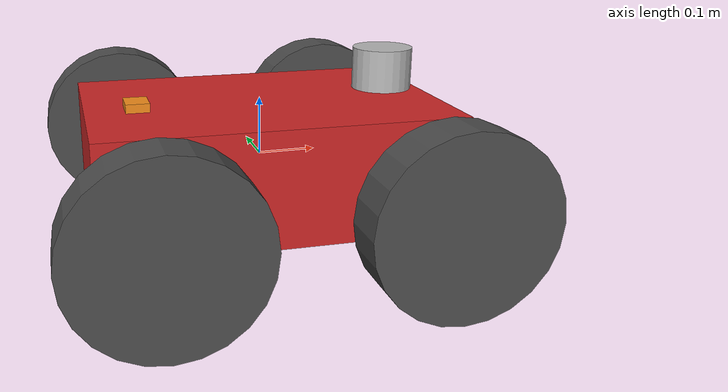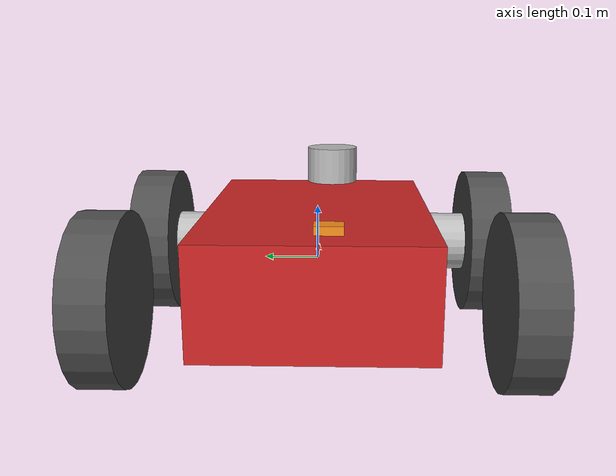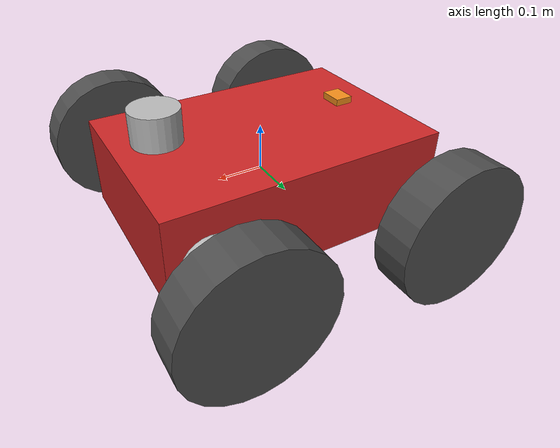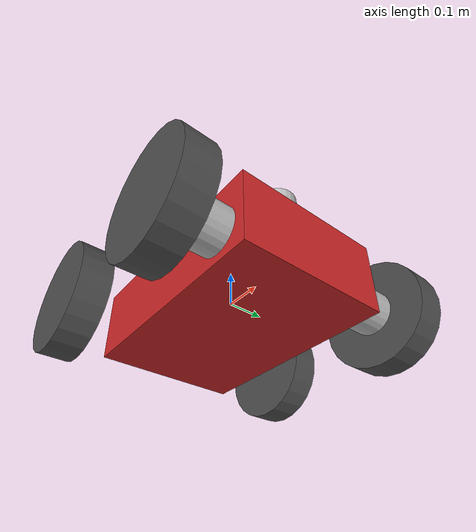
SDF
<sdf version='1.9'>
  <model name='arv'>
    <link name='base_link'>
      <inertial>
        <pose>0 0 0 0 0 0</pose>
        <mass>40</mass>
        <inertia>
          <ixx>0.68969666666666651</ixx>
          <ixy>0</ixy>
          <ixz>0</ixz>
          <iyy>1.349446666666666</iyy>
          <iyz>0</iyz>
          <izz>1.349446666666666</izz>
        </inertia>
      </inertial>
      <collision name='base_link_collision'>
        <pose>0 0 0 0 0 0</pose>
        <geometry>
          <box>
            <size>0.605 0.41 0.197</size>
          </box>
        </geometry>
        <surface>
          <contact>
            <ode/>
          </contact>
          <friction>
            <ode/>
          </friction>
        </surface>
      </collision>
      <visual name='base_link_visual'>
        <pose>0 0 0 0 0 0</pose>
        <geometry>
          <box>
            <size>0.605 0.41 0.197</size>
          </box>
        </geometry>
        <material>
          <script>
            <name>Gazebo/Red</name>
            <uri>file://media/materials/scripts/gazebo.material</uri>
          </script>
          <diffuse>1 0 0.125 1</diffuse>
          <ambient>1 0 0.125 1</ambient>
        </material>
      </visual>
    </link>
    <joint name='LEFT_HINGE_JOINT' type='revolute'>
      <pose relative_to='base_link'>0.2159 0.255 -0.0185 -1.570796326794896 0 0</pose>
      <parent>base_link</parent>
      <child>LEFT_HINGE</child>
      <axis>
        <xyz>0 1 0</xyz>
        <limit>
          <lower>-1</lower>
          <upper>1</upper>
          <effort>100</effort>
          <velocity>1</velocity>
        </limit>
        <dynamics>
          <damping>0</damping>
          <friction>0</friction>
          <spring_reference>0</spring_reference>
          <spring_stiffness>0</spring_stiffness>
        </dynamics>
      </axis>
    </joint>
    <link name='LEFT_HINGE'>
      <pose relative_to='LEFT_HINGE_JOINT'>0 0 0 0 0 0</pose>
      <inertial>
        <pose>0 0 0 0 0 0</pose>
        <mass>0.20000000000000001</mass>
        <inertia>
          <ixx>0.00034666666666666662</ixx>
          <ixy>0</ixy>
          <ixz>0</ixz>
          <iyy>0.00034666666666666662</iyy>
          <iyz>0</iyz>
          <izz>0.00036000000000000002</izz>
        </inertia>
      </inertial>
      <visual name='LEFT_HINGE_visual'>
        <pose>0 0 0 0 0 0</pose>
        <geometry>
          <cylinder>
            <length>0.10000000000000001</length>
            <radius>0.059999999999999998</radius>
          </cylinder>
        </geometry>
      </visual>
    </link>
    <joint name='LEFT_FRONT_WHEEL_JOINT' type='revolute'>
      <pose relative_to='LEFT_HINGE'>0 0 0.09 0 0 0</pose>
      <parent>LEFT_HINGE</parent>
      <child>LEFT_FRONT_WHEEL</child>
      <axis>
        <xyz>0 0 1</xyz>
        <limit>
          <effort>1</effort>
          <velocity>1</velocity>
          <lower>-10000000000000000</lower>
          <upper>10000000000000000</upper>
        </limit>
        <dynamics>
          <damping>1</damping>
          <friction>0</friction>
          <spring_reference>0</spring_reference>
          <spring_stiffness>0</spring_stiffness>
        </dynamics>
      </axis>
    </joint>
    <link name='LEFT_FRONT_WHEEL'>
      <pose relative_to='LEFT_FRONT_WHEEL_JOINT'>0 0 0 0 0 0</pose>
      <inertial>
        <pose>0 0 0 0 0 0</pose>
        <mass>5</mass>
        <inertia>
          <ixx>0.030791666666666662</ixx>
          <ixy>0</ixy>
          <ixz>0</ixz>
          <iyy>0.030791666666666662</iyy>
          <iyz>0</iyz>
          <izz>0.056249999999999988</izz>
        </inertia>
      </inertial>
      <collision name='LEFT_FRONT_WHEEL_collision'>
        <pose>0 0 0 0 0 0</pose>
        <geometry>
          <cylinder>
            <length>0.080000000000000002</length>
            <radius>0.14999999999999999</radius>
          </cylinder>
        </geometry>
        <surface>
          <contact>
            <ode>
              <kp>10000000</kp>
              <kd>1</kd>
              <max_vel>100</max_vel>
              <min_depth>0.0050000000000000001</min_depth>
            </ode>
          </contact>
          <friction>
            <ode>
              <mu>0.5</mu>
              <mu2>0.5</mu2>
              <fdir1>1 0 0</fdir1>
            </ode>
          </friction>
        </surface>
      </collision>
      <visual name='LEFT_FRONT_WHEEL_visual'>
        <pose>0 0 0 0 0 0</pose>
        <geometry>
          <cylinder>
            <length>0.080000000000000002</length>
            <radius>0.14999999999999999</radius>
          </cylinder>
        </geometry>
        <material>
          <script>
            <name>Gazebo/DarkGrey</name>
            <uri>file://media/materials/scripts/gazebo.material</uri>
          </script>
        </material>
      </visual>
    </link>
    <joint name='LEFT_REAR_WHEEL_JOINT' type='revolute'>
      <pose relative_to='base_link'>-0.2159 0.345 -0.0185 1.570796326794896 0 0</pose>
      <parent>base_link</parent>
      <child>LEFT_REAR_WHEEL</child>
      <axis>
        <xyz>0 0 1</xyz>
        <limit>
          <effort>1</effort>
          <velocity>1</velocity>
          <lower>-10000000000000000</lower>
          <upper>10000000000000000</upper>
        </limit>
        <dynamics>
          <damping>1</damping>
          <friction>0</friction>
          <spring_reference>0</spring_reference>
          <spring_stiffness>0</spring_stiffness>
        </dynamics>
      </axis>
    </joint>
    <link name='LEFT_REAR_WHEEL'>
      <pose relative_to='LEFT_REAR_WHEEL_JOINT'>0 0 0 0 0 0</pose>
      <inertial>
        <pose>0 0 0 0 0 0</pose>
        <mass>5</mass>
        <inertia>
          <ixx>0.030791666666666662</ixx>
          <ixy>0</ixy>
          <ixz>0</ixz>
          <iyy>0.030791666666666662</iyy>
          <iyz>0</iyz>
          <izz>0.056249999999999988</izz>
        </inertia>
      </inertial>
      <collision name='LEFT_REAR_WHEEL_collision'>
        <pose>0 0 0 0 0 0</pose>
        <geometry>
          <cylinder>
            <length>0.080000000000000002</length>
            <radius>0.14999999999999999</radius>
          </cylinder>
        </geometry>
        <surface>
          <contact>
            <ode>
              <kp>10000000</kp>
              <kd>1</kd>
              <max_vel>100</max_vel>
              <min_depth>0.0050000000000000001</min_depth>
            </ode>
          </contact>
          <friction>
            <ode>
              <mu>0</mu>
              <mu2>0</mu2>
              <fdir1>1 0 0</fdir1>
            </ode>
          </friction>
        </surface>
      </collision>
      <visual name='LEFT_REAR_WHEEL_visual'>
        <pose>0 0 0 0 0 0</pose>
        <geometry>
          <cylinder>
            <length>0.080000000000000002</length>
            <radius>0.14999999999999999</radius>
          </cylinder>
        </geometry>
        <material>
          <script>
            <name>Gazebo/DarkGrey</name>
            <uri>file://media/materials/scripts/gazebo.material</uri>
          </script>
        </material>
      </visual>
    </link>
    <joint name='RIGHT_HINGE_JOINT' type='revolute'>
      <pose relative_to='base_link'>0.2159 -0.255 -0.0185 -1.570796326794896 0 0</pose>
      <parent>base_link</parent>
      <child>RIGHT_HINGE</child>
      <axis>
        <xyz>0 1 0</xyz>
        <limit>
          <lower>-1</lower>
          <upper>1</upper>
          <effort>100</effort>
          <velocity>1</velocity>
        </limit>
        <dynamics>
          <damping>0</damping>
          <friction>0</friction>
          <spring_reference>0</spring_reference>
          <spring_stiffness>0</spring_stiffness>
        </dynamics>
      </axis>
    </joint>
    <link name='RIGHT_HINGE'>
      <pose relative_to='RIGHT_HINGE_JOINT'>0 0 0 0 0 0</pose>
      <inertial>
        <pose>0 0 0 0 0 0</pose>
        <mass>0.20000000000000001</mass>
        <inertia>
          <ixx>0.00034666666666666662</ixx>
          <ixy>0</ixy>
          <ixz>0</ixz>
          <iyy>0.00034666666666666662</iyy>
          <iyz>0</iyz>
          <izz>0.00036000000000000002</izz>
        </inertia>
      </inertial>
      <visual name='RIGHT_HINGE_visual'>
        <pose>0 0 0 0 0 0</pose>
        <geometry>
          <cylinder>
            <length>0.10000000000000001</length>
            <radius>0.059999999999999998</radius>
          </cylinder>
        </geometry>
      </visual>
    </link>
    <joint name='RIGHT_FRONT_WHEEL_JOINT' type='revolute'>
      <pose relative_to='RIGHT_HINGE'>0 0 -0.09 0 0 0</pose>
      <parent>RIGHT_HINGE</parent>
      <child>RIGHT_FRONT_WHEEL</child>
      <axis>
        <xyz>0 0 1</xyz>
        <limit>
          <effort>1</effort>
          <velocity>1</velocity>
          <lower>-10000000000000000</lower>
          <upper>10000000000000000</upper>
        </limit>
        <dynamics>
          <damping>1</damping>
          <friction>0</friction>
          <spring_reference>0</spring_reference>
          <spring_stiffness>0</spring_stiffness>
        </dynamics>
      </axis>
    </joint>
    <link name='RIGHT_FRONT_WHEEL'>
      <pose relative_to='RIGHT_FRONT_WHEEL_JOINT'>0 0 0 0 0 0</pose>
      <inertial>
        <pose>0 0 0 0 0 0</pose>
        <mass>5</mass>
        <inertia>
          <ixx>0.030791666666666662</ixx>
          <ixy>0</ixy>
          <ixz>0</ixz>
          <iyy>0.030791666666666662</iyy>
          <iyz>0</iyz>
          <izz>0.056249999999999988</izz>
        </inertia>
      </inertial>
      <collision name='RIGHT_FRONT_WHEEL_collision'>
        <pose>0 0 0 0 0 0</pose>
        <geometry>
          <cylinder>
            <length>0.080000000000000002</length>
            <radius>0.14999999999999999</radius>
          </cylinder>
        </geometry>
        <surface>
          <contact>
            <ode>
              <kp>10000000</kp>
              <kd>1</kd>
              <max_vel>100</max_vel>
              <min_depth>0.0050000000000000001</min_depth>
            </ode>
          </contact>
          <friction>
            <ode>
              <mu>0.5</mu>
              <mu2>0.5</mu2>
              <fdir1>1 0 0</fdir1>
            </ode>
          </friction>
        </surface>
      </collision>
      <visual name='RIGHT_FRONT_WHEEL_visual'>
        <pose>0 0 0 0 0 0</pose>
        <geometry>
          <cylinder>
            <length>0.080000000000000002</length>
            <radius>0.14999999999999999</radius>
          </cylinder>
        </geometry>
        <material>
          <script>
            <name>Gazebo/DarkGrey</name>
            <uri>file://media/materials/scripts/gazebo.material</uri>
          </script>
        </material>
      </visual>
    </link>
    <joint name='RIGHT_REAR_WHEEL_JOINT' type='revolute'>
      <pose relative_to='base_link'>-0.2159 -0.345 -0.0185 1.570796326794896 0 0</pose>
      <parent>base_link</parent>
      <child>RIGHT_REAR_WHEEL</child>
      <axis>
        <xyz>0 0 1</xyz>
        <limit>
          <effort>1</effort>
          <velocity>1</velocity>
          <lower>-10000000000000000</lower>
          <upper>10000000000000000</upper>
        </limit>
        <dynamics>
          <damping>1</damping>
          <friction>0</friction>
          <spring_reference>0</spring_reference>
          <spring_stiffness>0</spring_stiffness>
        </dynamics>
      </axis>
    </joint>
    <link name='RIGHT_REAR_WHEEL'>
      <pose relative_to='RIGHT_REAR_WHEEL_JOINT'>0 0 0 0 0 0</pose>
      <inertial>
        <pose>0 0 0 0 0 0</pose>
        <mass>5</mass>
        <inertia>
          <ixx>0.030791666666666662</ixx>
          <ixy>0</ixy>
          <ixz>0</ixz>
          <iyy>0.030791666666666662</iyy>
          <iyz>0</iyz>
          <izz>0.056249999999999988</izz>
        </inertia>
      </inertial>
      <collision name='RIGHT_REAR_WHEEL_collision'>
        <pose>0 0 0 0 0 0</pose>
        <geometry>
          <cylinder>
            <length>0.080000000000000002</length>
            <radius>0.14999999999999999</radius>
          </cylinder>
        </geometry>
        <surface>
          <contact>
            <ode>
              <kp>10000000</kp>
              <kd>1</kd>
              <max_vel>100</max_vel>
              <min_depth>0.0050000000000000001</min_depth>
            </ode>
          </contact>
          <friction>
            <ode>
              <mu>0</mu>
              <mu2>0</mu2>
              <fdir1>1 0 0</fdir1>
            </ode>
          </friction>
        </surface>
      </collision>
      <visual name='RIGHT_REAR_WHEEL_visual'>
        <pose>0 0 0 0 0 0</pose>
        <geometry>
          <cylinder>
            <length>0.080000000000000002</length>
            <radius>0.14999999999999999</radius>
          </cylinder>
        </geometry>
        <material>
          <script>
            <name>Gazebo/DarkGrey</name>
            <uri>file://media/materials/scripts/gazebo.material</uri>
          </script>
        </material>
      </visual>
    </link>
    <joint name='imu_joint' type='fixed'>
      <pose relative_to='base_link'>-0.2159 -0.02397 0.1035 0 0 0</pose>
      <parent>base_link</parent>
      <child>imu_link</child>
      <axis>
        <dynamics>
          <spring_reference>0</spring_reference>
          <spring_stiffness>0</spring_stiffness>
        </dynamics>
        <xyz>0 0 1</xyz>
        <limit>
          <lower>-10000000000000000</lower>
          <upper>10000000000000000</upper>
        </limit>
      </axis>
      <physics>
        <ode>
          <limit>
            <cfm>0</cfm>
            <erp>0.20000000000000001</erp>
          </limit>
        </ode>
      </physics>
    </joint>
    <link name='imu_link'>
      <pose relative_to='imu_joint'>0 0 0 0 0 0</pose>
      <inertial>
        <pose>0 0 0 0 0 0</pose>
        <mass>0.001</mass>
        <inertia>
          <ixx>0.0001</ixx>
          <ixy>0</ixy>
          <ixz>0</ixz>
          <iyy>9.9999999999999995e-07</iyy>
          <iyz>0</iyz>
          <izz>0.0001</izz>
        </inertia>
      </inertial>
      <collision name='imu_link_collision'>
        <pose>0 0 0 0 0 0</pose>
        <geometry>
          <box>
            <size>0.001 0.001 0.001</size>
          </box>
        </geometry>
        <surface>
          <contact>
            <ode/>
          </contact>
          <friction>
            <ode/>
          </friction>
        </surface>
      </collision>
      <visual name='imu_link_visual'>
        <pose>0 0 0 0 0 0</pose>
        <geometry>
          <box>
            <size>0.04 0.05 0.02</size>
          </box>
        </geometry>
        <material>
          <script>
            <name>Gazebo/Orange</name>
            <uri>file://media/materials/scripts/gazebo.material</uri>
          </script>
        </material>
      </visual>
      <sensor name='imu_sensor' type='imu'>
        <always_on>true</always_on>
        <update_rate>400</update_rate>
        <visualize>true</visualize>
        <topic>/arv/imu</topic>
        <ignition_frame_id>arv/imu_link</ignition_frame_id>
      </sensor>
    </link>
    <joint name='lidar_joint' type='fixed'>
      <pose relative_to='base_link'>0.2159 -0.02397 0.1485 0 0 0</pose>
      <parent>base_link</parent>
      <child>lidar_link</child>
      <axis>
        <dynamics>
          <spring_reference>0</spring_reference>
          <spring_stiffness>0</spring_stiffness>
        </dynamics>
        <xyz>0 0 1</xyz>
        <limit>
          <lower>-10000000000000000</lower>
          <upper>10000000000000000</upper>
        </limit>
      </axis>
      <physics>
        <ode>
          <limit>
            <cfm>0</cfm>
            <erp>0.20000000000000001</erp>
          </limit>
        </ode>
      </physics>
    </joint>
    <link name='lidar_link'>
      <pose relative_to='lidar_joint'>0 0 0 0 0 0</pose>
      <inertial>
        <pose>0 0 0 0 0 0</pose>
        <mass>0.14999999999999999</mass>
        <inertia>
          <ixx>0.00016410712499999999</ixx>
          <ixy>0</ixy>
          <ixz>0</ixz>
          <iyy>0.00016410712499999999</iyy>
          <iyz>0</iyz>
          <izz>0.00019969200000000001</izz>
        </inertia>
      </inertial>
      <collision name='lidar_link_collision'>
        <pose>0 0 0 0 0 0</pose>
        <geometry>
          <cylinder>
            <length>0.0717</length>
            <radius>0.0516</radius>
          </cylinder>
        </geometry>
        <surface>
          <contact>
            <ode/>
          </contact>
          <friction>
            <ode/>
          </friction>
        </surface>
      </collision>
      <visual name='lidar_link_visual'>
        <pose>0 0 0 0 0 0</pose>
        <geometry>
          <cylinder>
            <length>0.0717</length>
            <radius>0.0516</radius>
          </cylinder>
        </geometry>
      </visual>
      <sensor name='gpu_lidar' type='gpu_lidar'>
        <topic>/scan</topic>
        <update_rate>400</update_rate>
        <lidar>
          <scan>
            <horizontal>
              <samples>640</samples>
              <resolution>1</resolution>
              <min_angle>-1.396263</min_angle>
              <max_angle>1.396263</max_angle>
            </horizontal>
            <vertical>
              <samples>1</samples>
              <resolution>1</resolution>
              <min_angle>0</min_angle>
              <max_angle>0</max_angle>
            </vertical>
          </scan>
          <range>
            <min>0.080000000000000002</min>
            <max>10</max>
            <resolution>0.01</resolution>
          </range>
          <noise>
            <type>gaussian</type>
            <mean>0</mean>
            <stddev>0.001</stddev>
          </noise>
        </lidar>
        <visualize>true</visualize>
        <ignition_frame_id>arv/lidar_link</ignition_frame_id>
        <alwaysOn>1</alwaysOn>
      </sensor>
    </link>
    <frame name='base_to_base_inertia' attached_to='base_link'>
      <pose>0 0 0 0 -0 0</pose>
    </frame>
    <frame name='base_inertia' attached_to='base_to_base_inertia'/>
  </model>
</sdf>
